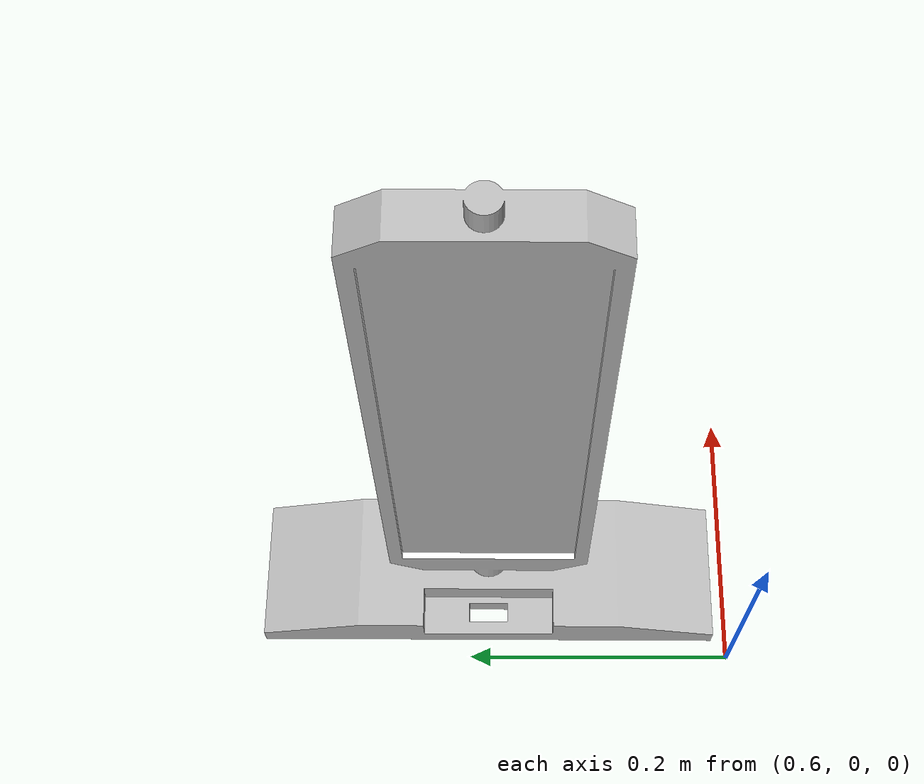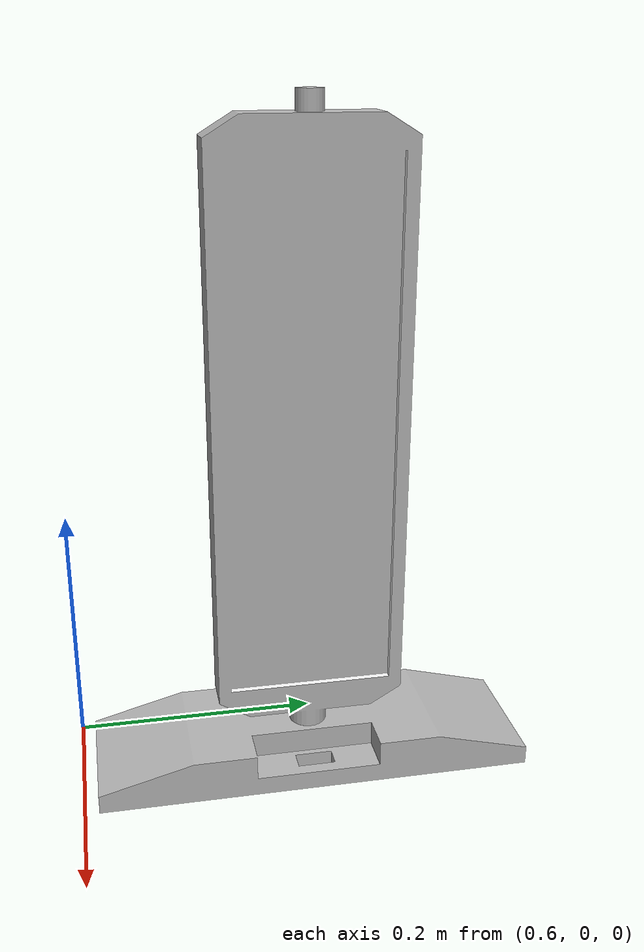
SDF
<?xml version="1.0" ?>
<sdf version="1.5">
  <model name="safety_pole">
    <static>true</static>
    <link name="safety_pole_link">
        <collision name="safety_pole_collision">
         <geometry>
            <mesh>
                <uri>model://safety_pole/meshes/model.dae</uri>
                <scale>0.5 0.5 0.5</scale>
            </mesh>
        </geometry>
      </collision>

      <visual name="safety_pole_mesh">
        <cast_shadows>true</cast_shadows>
        <geometry>
            <mesh>
                <uri>model://safety_pole/meshes/model.dae</uri>
                <scale>0.5 0.5 0.5</scale>
            </mesh>
        </geometry>
      </visual>
    </link>
  </model>
</sdf>
